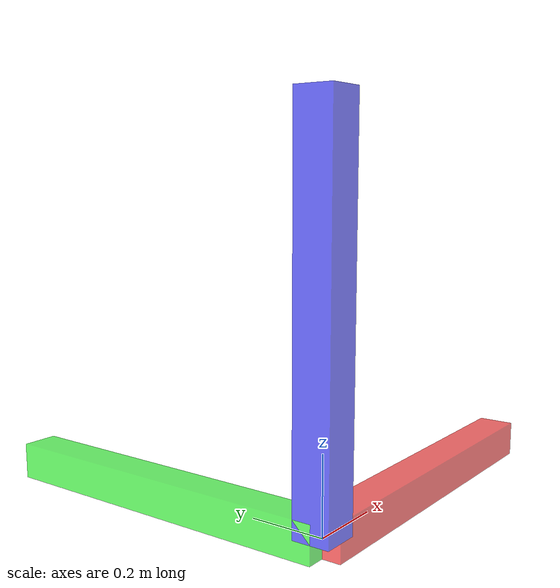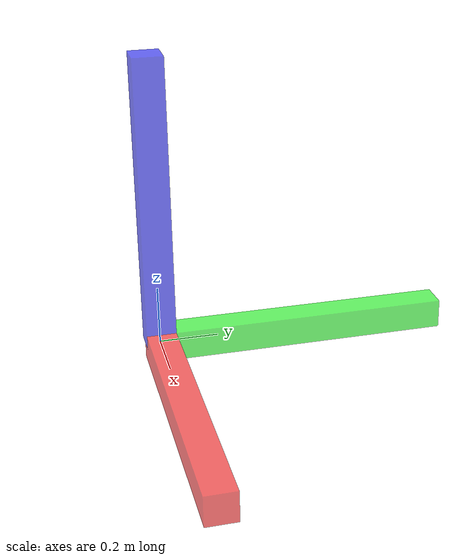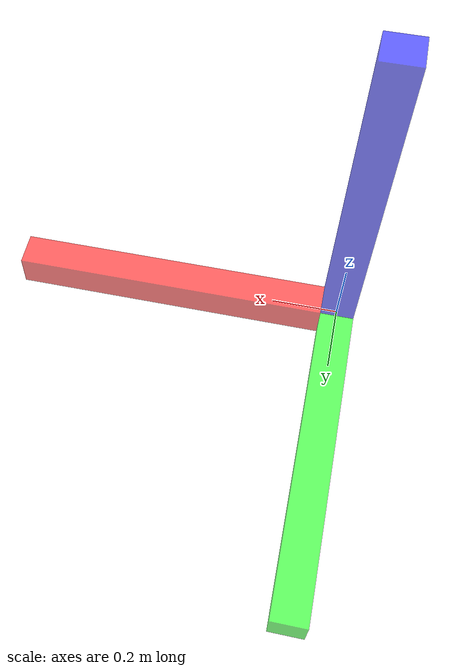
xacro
<?xml version="1.0" encoding="utf-8"  ?>
<robot name="axes" xmlns:xacro="http://www.ros.org/wiki/xacro">

	<xacro:arg name="add_world_link" default="False" />
	<xacro:arg name="size" default="1.0" />

	<xacro:property name="color_rgba" default="0.9 0.1 0.1 0.8" />
	<xacro:property name="add_world_link" default="$(arg add_world_link)" />
	<xacro:property name="size" default="$(arg size)" />

	<material name="red">
		<color rgba="1 0 0 0.6"/>
	</material>
	<material name="green">
		<color rgba="0 1 0 0.6"/>
	</material>
	<material name="blue">
		<color rgba="0 0 1 0.6"/>
	</material>

	<xacro:macro name="box_inertial" params="mass x y z pose_xyz pose_rpy">
		<inertial>
			<origin xyz="${pose_xyz}" rpy="${pose_rpy}"/>
			<mass value="${mass}" />
			<inertia ixx="${0.083 * mass * (y*y + z*z)}" ixy="0.0" ixz="0.0" iyy="${0.083 * mass * (x*x + z*z)}" iyz="0.0" izz="${0.083 * mass * (x*x + y*y)}"/>
		</inertial>
	</xacro:macro>

	<link name="x_arrow">
        <visual>
			<origin xyz="${size/2} 0 0" rpy="0 0 0"/>
            <geometry>
				<box size="${size} ${0.1*size} ${0.1*size}"/>
            </geometry>
			<material name="red"/>
        </visual>
		<xacro:box_inertial mass="0.001" x="1" y="1" z="1" pose_xyz="0 0 0" pose_rpy="0 0 0"/>
	</link>
	<gazebo reference="arrow_link">
		<visual name="visual">
			<material>
				<ambient>${color_rgba}</ambient>
				<diffuse>${color_rgba}</diffuse>
				<specular>0 0 0 1</specular>
				<emissive>0 0 0 1</emissive>
			</material>
      	</visual>
    </gazebo>
	<link name="y_arrow">
        <visual>
			<origin xyz="0 ${size/2} 0" rpy="0 0 1.5707"/>
            <geometry>
				<box size="${size} ${0.1*size} ${0.1*size}"/>
            </geometry>
			<material name="green"/>
        </visual>
		<xacro:box_inertial mass="0.001" x="1" y="1" z="1" pose_xyz="0 0 0" pose_rpy="0 0 0"/>
	</link>
	<gazebo reference="arrow_link">
		<visual name="visual">
			<material>
				<ambient>${color_rgba}</ambient>
				<diffuse>${color_rgba}</diffuse>
				<specular>0 0 0 1</specular>
				<emissive>0 0 0 1</emissive>
			</material>
      	</visual>
    </gazebo>
	<link name="z_arrow">
        <visual>
			<origin xyz="0 0 ${size/2}" rpy="0 -1.5707 0"/>
            <geometry>
				<box size="${size} ${0.1*size} ${0.1*size}"/>
            </geometry>
			<material name="blue"/>
        </visual>
		<xacro:box_inertial mass="0.001" x="1" y="1" z="1" pose_xyz="0 0 0" pose_rpy="0 0 0"/>
	</link>
	<gazebo reference="arrow_link">
		<visual name="visual">
			<material>
				<ambient>${color_rgba}</ambient>
				<diffuse>${color_rgba}</diffuse>
				<specular>0 0 0 1</specular>
				<emissive>0 0 0 1</emissive>
			</material>
      	</visual>
    </gazebo>

	<link name="root"/>
	<joint name="root_jointy" type="fixed">
		<parent link="root"/>
		<child link="y_arrow"/>
	</joint>
	<joint name="root_jointx" type="fixed">
		<parent link="root"/>
		<child link="x_arrow"/>
	</joint>
	<joint name="root_jointz" type="fixed">
		<parent link="root"/>
		<child link="z_arrow"/>
	</joint>

	<xacro:if value="${add_world_link}">
		<link name="world"/>
		<joint name="world_joint" type="fixed">
			<parent link="world"/>
			<child link="root"/>
		</joint>
	</xacro:if>

	<gazebo>
		<static>true</static>
	</gazebo>
</robot>
